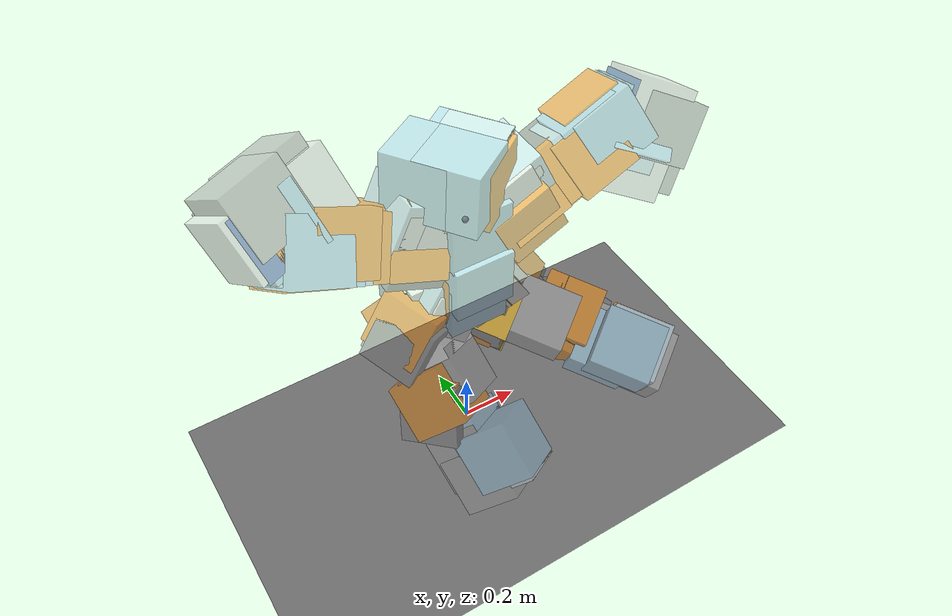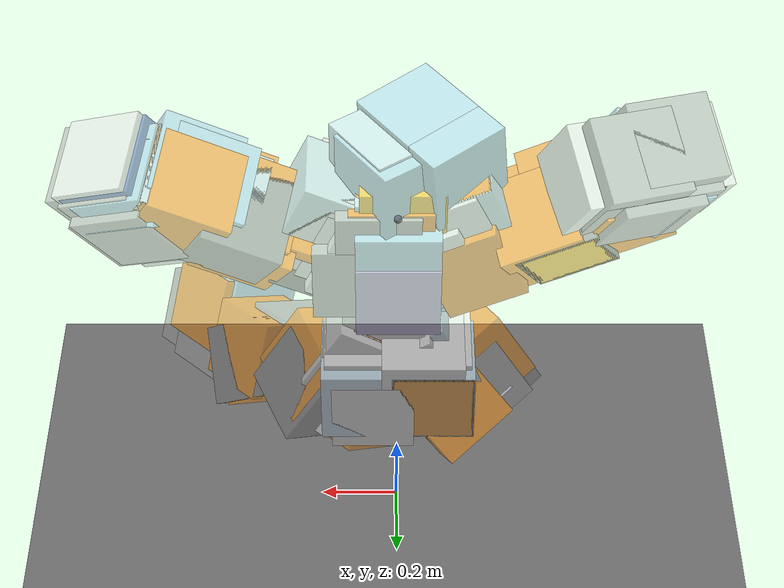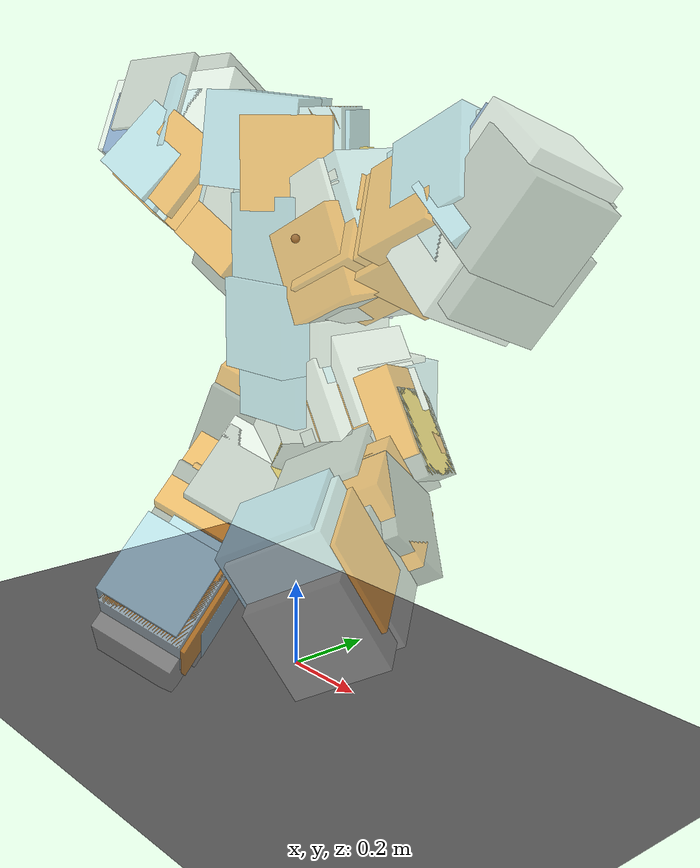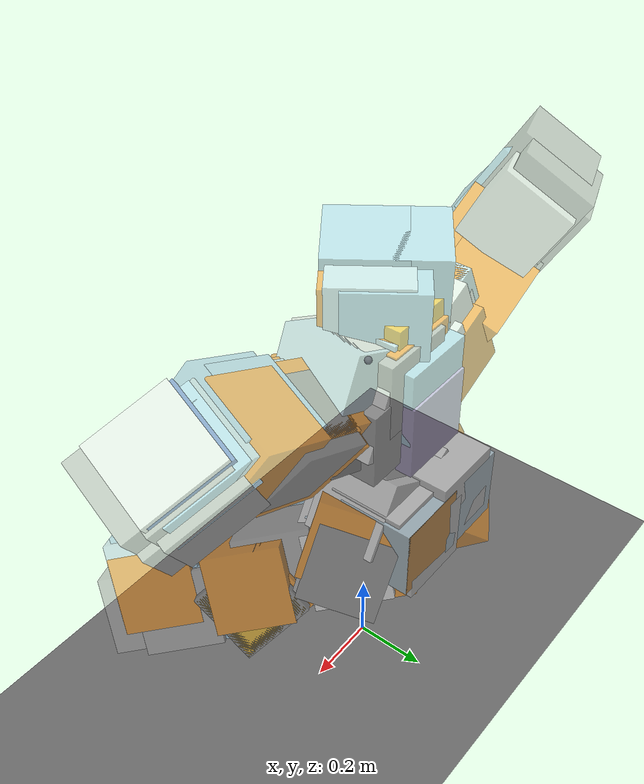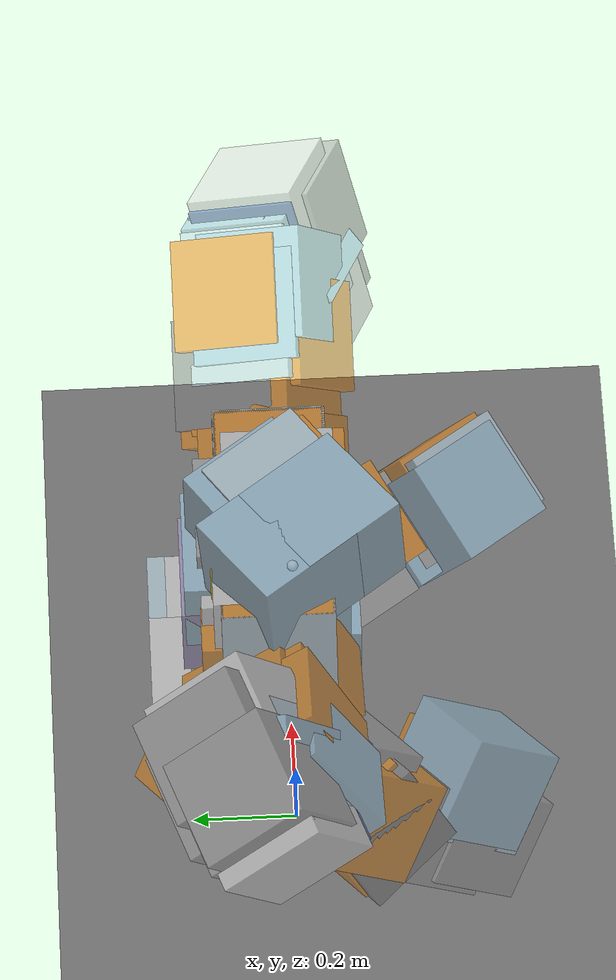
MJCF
<?xml version="1.0" ?>
<mujoco model="robot">

  <compiler angle="radian" meshdir="meshes" autolimits="true"/>

  <default>
    <joint limited="true" damping="0.1" armature="0.01"/>
    <geom condim="4" contype="1" conaffinity="15" friction="0.9 0.2 0.2" solref="0.001 2"/>
    <motor ctrllimited="true"/>
    <equality solref="0.001 2"/>
  </default>

  <asset>
    <texture name="texplane" type="2d" builtin="checker" rgb1=".0 .0 .0" rgb2=".8 .8 .8" width="100" height="108"/>
    <material name="matplane" reflectance="0." texture="texplane" texrepeat="1 1" texuniform="true"/>
  </asset>

  <worldbody>

    <geom name="ground" type="plane" pos="0.001 0 0" quat="1 0 0 0" material="matplane" condim="1" conaffinity="15" size="0 0 1"/>
    <light directional="true" diffuse="0.6 0.6 0.6" specular="0.2 0.2 0.2" pos="0 0 4" dir="0 0 -1"/>
    <light directional="true" diffuse="0.4 0.4 0.4" specular="0.1 0.1 0.1" pos="0 0 5.0" dir="0 0 -1" castshadow="false"/>
    <body name="root" pos="0 0 1.0" quat="1 0 0 0">
      <joint name="root_x" type="slide" axis="1 0 0" limited="false"/>
      <joint name="root_y" type="slide" axis="0 1 0" limited="false"/>
      <joint name="root_z" type="slide" axis="0 0 1" limited="false"/>
      <joint name="root_ball" type="ball" limited="false"/>
      <site name="imu" size="0.01" pos="0 0 0"/>
      <geom type="box" rgba="0.615686 0.811765 0.929412 0.501961" size="0.1 0.1 0.1"/>

      <geom pos="0.0160579 0.0593235 0.0498109" quat="0 -2.32051e-08 1 -2.32051e-08" type="box" rgba="0.972549 0.529412 0.00392157 0.501961" size="0.1 0.1 0.1"/>

      <geom pos="0.000148008 0.0434136 0.0633109" quat="2.32051e-08 0 -4.64102e-08 -1" type="box" rgba="0.768627 0.886275 0.952941 0.501961" size="0.1 0.1 0.1"/>

      <geom pos="-0.0870555 0.0664737 -0.0301332" quat="0.379928 -0.596368 0.596368 -0.379928" type="box" rgba="0.917647 0.917647 0.917647 0.501961" size="0.1 0.1 0.1"/>

      <geom pos="-0.0766223 0.032495 -0.00775921" quat="0.596368 0.379928 -0.379928 -0.596368" type="box" rgba="0.768627 0.886275 0.952941 0.501961" size="0.1 0.1 0.1"/>

      <geom pos="0.0870988 0.0664737 -0.0302898" quat="0.379928 -0.596368 -0.596368 0.379928" type="box" rgba="0.917647 0.917647 0.917647 0.501961" size="0.1 0.1 0.1"/>

      <geom pos="0.0766657 0.032495 -0.00791584" quat="0.596368 0.379928 0.379928 0.596368" type="box" rgba="0.768627 0.886275 0.952941 0.501961" size="0.1 0.1 0.1"/>

      <geom pos="-0.0521972 0.0576546 -0.0517891" quat="-2.32051e-08 1 0 0" type="box" rgba="0.615686 0.811765 0.929412 0.501961" size="0.1 0.1 0.1"/>

      <geom pos="0.101188 0.070595 -0.0581391" quat="0.707107 0.707107 0 0" type="box" rgba="0.647059 0.647059 0.647059 0.501961" size="0.1 0.1 0.1"/>

      <geom pos="0.0339639 0.0573548 -0.267689" quat="-1 -4.64102e-08 0 0" type="box" rgba="0.917647 0.917647 0.917647 0.501961" size="0.1 0.1 0.1"/>

      <geom pos="-1.4863e-05 0.0326678 -0.267689" quat="-1 -4.64102e-08 0 0" type="box" rgba="0.972549 0.529412 0.00392157 0.501961" size="0.1 0.1 0.1"/>

      <geom pos="-1.4863e-05 0.0171678 -0.300689" quat="6.96153e-08 -1 0 0" type="box" rgba="0.615686 0.811765 0.929412 0.501961" size="0.1 0.1 0.1"/>

      <geom pos="-0.0608462 0.162768 -0.344553" quat="-0.707107 -0.707107 0 0" type="box" rgba="0.917647 0.917647 0.917647 0.501961" size="0.1 0.1 0.1"/>

      <geom pos="-0.0855332 0.162768 -0.378532" quat="-0.5 -0.5 0.5 -0.5" type="box" rgba="0.768627 0.886275 0.952941 0.501961" size="0.1 0.1 0.1"/>

      <geom pos="0.0608165 0.162768 -0.41251" quat="-0.707107 -0.707107 0 0" type="box" rgba="0.917647 0.917647 0.917647 0.501961" size="0.1 0.1 0.1"/>

      <geom pos="0.0855035 0.162768 -0.378532" quat="-0.5 -0.5 -0.5 0.5" type="box" rgba="0.768627 0.886275 0.952941 0.501961" size="0.1 0.1 0.1"/>

      <geom pos="-1.4863e-05 0.0326678 -0.267689" quat="6.96153e-08 -1 0 0" type="box" rgba="0.768627 0.886275 0.952941 0.501961" size="0.1 0.1 0.1"/>

      <geom pos="5.1467e-05 -0.0190049 -0.184989" quat="0 -2.32051e-08 -1 -2.32051e-08" type="box" rgba="0.615686 0.811765 0.929412 0.501961" size="0.1 0.1 0.1"/>

      <geom pos="0.0457081 0.070595 0.0448109" quat="0.707107 0.707107 0 0" type="box" rgba="0.647059 0.647059 0.647059 0.501961" size="0.1 0.1 0.1"/>

      <geom pos="-1.4862e-05 0.095595 0.00363456" quat="0.707107 0.707107 0 0" type="box" rgba="0.615686 0.811765 0.929412 0.501961" size="0.1 0.1 0.1"/>

      <geom pos="-1.4862e-05 0.101945 -0.0860179" quat="0.707107 0.707107 0 0" type="box" rgba="0.654902 0.584314 0.823529 0.501961" size="0.1 0.1 0.1"/>

      <body name="link_head_1_x4_1_inner_1" pos="0.000148008 0.0434136 0.0633109" quat="0 2.32051e-08 -1 6.96153e-08">

        <inertial pos="0.00202976 -0.0118633 -0.105521" quat="0.838901 -0.101396 -0.0688856 0.5303" mass="0.827332" diaginertia="0.00357088 0.00317042 0.00242602"/>

        <joint name="joint_head_1_x4_1_dof_x4" pos="0 0 0" axis="0 0 1" range="-0.1 0" actuatorfrcrange="-1.5 1.5"/>

        <geom type="box" rgba="0.972549 0.529412 0.00392157 0.501961" size="0.1 0.1 0.1"/>

        <geom pos="0.0105058 0.00467747 -0.0345" quat="-2.32051e-08 1 0 0" type="box" rgba="0.980392 0.713726 0.00392157 0.501961" size="0.1 0.1 0.1"/>

        <geom pos="-0.0153423 -0.0481844 -0.10559" quat="0.672498 0.672499 -0.218508 -0.218508" type="box" rgba="0.972549 0.529412 0.00392157 0.501961" size="0.1 0.1 0.1"/>

        <geom pos="-0.0202786 -0.0279111 -0.1215" quat="-0.672499 0.672498 -0.218508 0.218508" type="box" rgba="0.768627 0.886275 0.952941 0.501961" size="0.1 0.1 0.1"/>

        <geom pos="-0.0202786 -0.0279111 -0.1215" quat="-0.672498 -0.672499 0.218508 0.218508" type="box" rgba="0.972549 0.529412 0.00392157 0.501961" size="0.1 0.1 0.1"/>

        <geom pos="-0.00752685 0.00546858 -0.11474" quat="0.672499 -0.672498 0.218508 -0.218508" type="box" rgba="0.615686 0.811765 0.929412 0.501961" size="0.1 0.1 0.1"/>

        <geom pos="0.1069 -0.0191042 -0.148502" quat="0.337381 0.303779 -0.5962 -0.662147" type="box" rgba="0.615686 0.811765 0.929412 0.501961" size="0.1 0.1 0.1"/>

        <geom pos="0.051203 -0.095764 -0.148502" quat="0.337381 0.303779 -0.5962 -0.662147" type="box" rgba="0.615686 0.811765 0.929412 0.501961" size="0.1 0.1 0.1"/>

      </body>

      <body name="link_right_arm_1_x8_1_inner_1" pos="-0.0766223 0.032495 -0.00775921" quat="0.379928 -0.596368 0.596368 -0.379928">

        <inertial pos="5.74658e-05 -0.0157287 -0.0923329" quat="0.705112 -0.0547355 0.055379 0.704808" mass="0.917616" diaginertia="0.00229411 0.00183573 0.000730018"/>

        <joint name="joint_right_arm_1_x8_1_dof_x8" pos="0 0 0" axis="0 0 1" range="1.47 1.5" actuatorfrcrange="-6 6"/>

        <geom type="box" rgba="0.972549 0.529412 0.00392157 0.501961" size="0.1 0.1 0.1"/>

        <geom pos="0 0.0155 -0.033" quat="-2.32051e-08 1 0 0" type="box" rgba="0.917647 0.917647 0.917647 0.501961" size="0.1 0.1 0.1"/>

        <geom pos="-0.0129787 -0.033 -0.0700556" quat="0.707107 0.707107 0 0" type="box" rgba="0.917647 0.917647 0.917647 0.501961" size="0.1 0.1 0.1"/>

        <geom pos="0 -0.033 -0.11" quat="-0.707107 0.707107 0 0" type="box" rgba="0.768627 0.886275 0.952941 0.501961" size="0.1 0.1 0.1"/>

        <body name="link_right_arm_1_x8_2_inner_1" pos="0 -0.033 -0.11" quat="0.707107 0.707107 0 0">

          <inertial pos="-0.0143491 -0.228792 -0.0717893" quat="0.727446 0.648688 -0.17523 0.139001" mass="2.51025" diaginertia="0.0680865 0.0653997 0.00571534"/>

          <joint name="joint_right_arm_1_x8_2_dof_x8" pos="0 0 0" axis="0 0 1" range="1.8 1.83" actuatorfrcrange="-6 6"/>

          <geom type="box" rgba="0.972549 0.529412 0.00392157 0.501961" size="0.1 0.1 0.1"/>

          <geom pos="0 0.0155 -0.033" type="box" rgba="0.917647 0.917647 0.917647 0.501961" size="0.1 0.1 0.1"/>

          <geom pos="-0.036 0.0325 -0.0945" quat="0.5 -0.5 -0.5 -0.5" type="box" rgba="0.972549 0.529412 0.00392157 0.501961" size="0.1 0.1 0.1"/>

          <geom pos="0 0.0325 -0.0945" quat="0.5 -0.5 -0.5 -0.5" type="box" rgba="0.498039 0.498039 0.498039 0.501961" size="0.1 0.1 0.1"/>

          <geom pos="0.00995929 1.23147e-09 -0.08875" quat="-0.183013 0.183013 -0.683013 -0.683013" type="box" rgba="0.972549 0.529412 0.00392157 0.501961" size="0.1 0.1 0.1"/>

          <geom pos="-0.0371458 -0.150323 -0.0951615" quat="-0.353553 0.612372 0.612372 -0.353553" type="box" rgba="0.972549 0.529412 0.00392157 0.501961" size="0.1 0.1 0.1"/>

          <geom pos="-0.0281458 -0.1815 -0.11075" quat="-0.353553 0.612372 0.612372 -0.353553" type="box" rgba="0.498039 0.498039 0.498039 0.501961" size="0.1 0.1 0.1"/>

          <geom pos="5.79459e-09 -0.17 -0.0945" quat="-0.612372 -0.353553 -0.353553 -0.612372" type="box" rgba="0.972549 0.529412 0.00392157 0.501961" size="0.1 0.1 0.1"/>

          <geom pos="0.0101536 -0.246 -0.0702667" quat="0.353553 -0.353553 -0.612372 -0.612372" type="box" rgba="0.972549 0.529412 0.00392157 0.501961" size="0.1 0.1 0.1"/>

          <geom pos="0.00433014 -0.2595 -0.092" quat="0.353553 0.353553 -0.612372 0.612372" type="box" rgba="0.768627 0.886275 0.952941 0.501961" size="0.1 0.1 0.1"/>

          <geom pos="0.00433014 -0.2595 -0.092" quat="-0.353553 0.353553 0.612372 0.612372" type="box" rgba="0.972549 0.529412 0.00392157 0.501961" size="0.1 0.1 0.1"/>

          <geom pos="0.0148359 -0.294 -0.0966775" quat="-0.32102 0.32102 0.630037 0.630037" type="box" rgba="0.615686 0.811765 0.929412 0.501961" size="0.1 0.1 0.1"/>

          <geom pos="-0.00897072 -0.32159 -0.121329" quat="-0.453991 -1.98957e-08 0.891007 -4.03647e-08" type="box" rgba="0.972549 0.529412 0.00392157 0.501961" size="0.1 0.1 0.1"/>

          <geom pos="-0.0074006 -0.3375 -0.100523" quat="3.04306e-08 -0.453991 -6.10406e-08 -0.891007" type="box" rgba="0.768627 0.886275 0.952941 0.501961" size="0.1 0.1 0.1"/>

          <geom pos="-0.0074006 -0.3375 -0.100523" quat="0.453991 4.09655e-08 -0.891007 8.17165e-08" type="box" rgba="0.972549 0.529412 0.00392157 0.501961" size="0.1 0.1 0.1"/>

          <geom pos="0.0259791 -0.33074 -0.0877711" quat="-5.15004e-08 0.453991 1.02392e-07 0.891007" type="box" rgba="0.615686 0.811765 0.929412 0.501961" size="0.1 0.1 0.1"/>

          <geom pos="-0.0333098 -0.42144 -0.0648618" quat="-0.707107 -0.415627 -3.08568e-08 0.572061" type="box" rgba="0.615686 0.811765 0.929412 0.501961" size="0.1 0.1 0.1"/>

          <geom pos="-0.0248871 -0.450369 -0.0526365" quat="0.415627 -0.707107 0.572061 1.75821e-08" type="box" rgba="0.231373 0.380392 0.705882 0.501961" size="0.1 0.1 0.1"/>

          <geom pos="-0.0779239 -0.339786 0.0203623" quat="0.698401 -0.5 0.110616 0.5" type="box" rgba="0.917647 0.917647 0.917647 0.501961" size="0.1 0.1 0.1"/>

          <geom pos="-0.0769857 -0.369417 0.00205806" quat="8.27991e-09 -0.572061 -0.707107 -0.415627" type="box" rgba="0.647059 0.647059 0.647059 0.501961" size="0.1 0.1 0.1"/>

          <geom pos="-0.0981467 -0.395573 0.0311837" quat="8.27991e-09 -0.572061 -0.707107 -0.415627" type="box" rgba="0.647059 0.647059 0.647059 0.501961" size="0.1 0.1 0.1"/>

          <geom pos="-0.0226452 -0.469229 -0.0557222" quat="-0.5 -0.698401 -0.5 0.110616" type="box" rgba="0.917647 0.917647 0.917647 0.501961" size="0.1 0.1 0.1"/>

          <geom pos="-0.0445095 -0.445464 -0.0426416" quat="-0.415627 0.707107 -0.572061 -4.41316e-08" type="box" rgba="0.647059 0.647059 0.647059 0.501961" size="0.1 0.1 0.1"/>

          <geom pos="-0.0494902 -0.471621 -0.00176025" quat="-0.415627 0.707107 -0.572061 -4.41316e-08" type="box" rgba="0.647059 0.647059 0.647059 0.501961" size="0.1 0.1 0.1"/>

          <geom pos="-0.0787869 -0.404508 -0.038388" quat="0.415627 -0.707107 0.572061 1.75821e-08" type="box" rgba="0.647059 0.647059 0.647059 0.501961" size="0.1 0.1 0.1"/>

          <geom pos="-0.0367923 -0.352255 -0.063318" quat="-0.415627 0.707107 -0.572061 -1.55285e-08" type="box" rgba="0.972549 0.529412 0.00392157 0.501961" size="0.1 0.1 0.1"/>

          <geom pos="-0.0248438 -0.373061 -0.0526961" quat="-0.707107 -0.415627 -2.25378e-09 0.572061" type="box" rgba="0.768627 0.886275 0.952941 0.501961" size="0.1 0.1 0.1"/>

          <geom pos="-0.0248438 -0.373061 -0.0526961" quat="0.415627 -0.707107 0.572061 -1.1021e-08" type="box" rgba="0.972549 0.529412 0.00392157 0.501961" size="0.1 0.1 0.1"/>

          <geom pos="-0.041404 -0.401839 -0.0378607" quat="0.226367 0.094653 0.904597 0.348574" type="box" rgba="0.615686 0.811765 0.929412 0.501961" size="0.1 0.1 0.1"/>

          <geom pos="-0.0281458 -0.1815 -0.11075" quat="-0.612372 -0.353553 -0.353553 -0.612372" type="box" rgba="0.980392 0.713726 0.00392157 0.501961" size="0.1 0.1 0.1"/>

          <geom pos="0 0.0325 -0.0945" quat="0.5 0.5 -0.5 0.5" type="box" rgba="0.980392 0.713726 0.00392157 0.501961" size="0.1 0.1 0.1"/>

        </body>

      </body>

      <body name="link_left_arm_2_x8_1_inner_1" pos="0.0766657 0.032495 -0.00791584" quat="0.379928 -0.596368 -0.596368 0.379928">

        <inertial pos="5.74658e-05 -0.0157287 -0.0923329" quat="0.705112 -0.0547355 0.055379 0.704808" mass="0.917616" diaginertia="0.00229411 0.00183573 0.000730018"/>

        <joint name="joint_left_arm_2_x8_1_dof_x8" pos="0 0 0" axis="0 0 1" range="-1.23 -1.2" actuatorfrcrange="-6 6"/>

        <geom type="box" rgba="0.972549 0.529412 0.00392157 0.501961" size="0.1 0.1 0.1"/>

        <geom pos="0 0.0155 -0.033" quat="-2.32051e-08 1 0 0" type="box" rgba="0.917647 0.917647 0.917647 0.501961" size="0.1 0.1 0.1"/>

        <geom pos="-0.0129787 -0.033 -0.0700556" quat="0.707107 0.707107 0 0" type="box" rgba="0.917647 0.917647 0.917647 0.501961" size="0.1 0.1 0.1"/>

        <geom pos="0 -0.033 -0.11" quat="-0.707107 0.707107 0 0" type="box" rgba="0.768627 0.886275 0.952941 0.501961" size="0.1 0.1 0.1"/>

        <body name="link_left_arm_2_x8_2_inner_1" pos="0 -0.033 -0.11" quat="0.707107 0.707107 0 0">

          <inertial pos="-0.0082135 -0.228792 -0.110868" quat="0.625134 0.762538 0.0972429 -0.13523" mass="2.51025" diaginertia="0.0691227 0.0669264 0.00509173"/>

          <joint name="joint_left_arm_2_x8_2_dof_x8" pos="0 0 0" axis="0 0 1" range="-1.63 -1.6" actuatorfrcrange="-6 6"/>

          <geom type="box" rgba="0.972549 0.529412 0.00392157 0.501961" size="0.1 0.1 0.1"/>

          <geom pos="0 0.0155 -0.033" type="box" rgba="0.917647 0.917647 0.917647 0.501961" size="0.1 0.1 0.1"/>

          <geom pos="-0.036 0.0325 -0.0945" quat="0.5 -0.5 -0.5 -0.5" type="box" rgba="0.972549 0.529412 0.00392157 0.501961" size="0.1 0.1 0.1"/>

          <geom pos="0 0.0325 -0.0945" quat="0.5 -0.5 -0.5 -0.5" type="box" rgba="0.498039 0.498039 0.498039 0.501961" size="0.1 0.1 0.1"/>

          <geom pos="-0.00995929 6.97758e-10 -0.08875" quat="0.683013 -0.683013 0.183013 0.183013" type="box" rgba="0.972549 0.529412 0.00392157 0.501961" size="0.1 0.1 0.1"/>

          <geom pos="0.0191458 -0.150323 -0.126338" quat="-0.353553 -0.612372 -0.612372 -0.353553" type="box" rgba="0.972549 0.529412 0.00392157 0.501961" size="0.1 0.1 0.1"/>

          <geom pos="0.0281458 -0.1815 -0.11075" quat="-0.353553 -0.612372 -0.612372 -0.353553" type="box" rgba="0.498039 0.498039 0.498039 0.501961" size="0.1 0.1 0.1"/>

          <geom pos="3.54902e-09 -0.17 -0.0945" quat="0.612372 -0.353553 -0.353553 0.612372" type="box" rgba="0.972549 0.529412 0.00392157 0.501961" size="0.1 0.1 0.1"/>

          <geom pos="-0.0260635 -0.246 -0.0978234" quat="0.353553 -0.353553 0.612372 0.612372" type="box" rgba="0.972549 0.529412 0.00392157 0.501961" size="0.1 0.1 0.1"/>

          <geom pos="-0.00433012 -0.2595 -0.092" quat="0.353553 0.353553 0.612372 -0.612372" type="box" rgba="0.768627 0.886275 0.952941 0.501961" size="0.1 0.1 0.1"/>

          <geom pos="-0.00433012 -0.2595 -0.092" quat="-0.353553 0.353553 -0.612372 -0.612372" type="box" rgba="0.972549 0.529412 0.00392157 0.501961" size="0.1 0.1 0.1"/>

          <geom pos="-0.0055322 -0.294 -0.080563" quat="-0.385118 0.385118 -0.59303 -0.59303" type="box" rgba="0.615686 0.811765 0.929412 0.501961" size="0.1 0.1 0.1"/>

          <geom pos="0.0277203 -0.32159 -0.0888542" quat="-0.544639 -1.44742e-08 -0.838671 1.67367e-08" type="box" rgba="0.972549 0.529412 0.00392157 0.501961" size="0.1 0.1 0.1"/>

          <geom pos="0.00891628 -0.3375 -0.0978977" quat="2.71126e-08 -0.544639 3.61981e-08 0.838671" type="box" rgba="0.768627 0.886275 0.952941 0.501961" size="0.1 0.1 0.1"/>

          <geom pos="0.00891628 -0.3375 -0.0978977" quat="0.544639 3.9751e-08 0.838671 -5.56595e-08" type="box" rgba="0.972549 0.529412 0.00392157 0.501961" size="0.1 0.1 0.1"/>

          <geom pos="-0.0188169 -0.33074 -0.0753659" quat="-5.23894e-08 0.544639 -7.5121e-08 -0.838671" type="box" rgba="0.615686 0.811765 0.929412 0.501961" size="0.1 0.1 0.1"/>

          <geom pos="-0.00901247 -0.42144 -0.138166" quat="0.353553 0.703233 -0.612372 0.0739128" type="box" rgba="0.615686 0.811765 0.929412 0.501961" size="0.1 0.1 0.1"/>

          <geom pos="-0.0238113 -0.450369 -0.136985" quat="-0.703233 0.353553 0.0739128 0.612372" type="box" rgba="0.231373 0.380392 0.705882 0.501961" size="0.1 0.1 0.1"/>

          <geom pos="-0.0605117 -0.339786 -0.219415" quat="-0.444997 0.683013 0.549525 0.183013" type="box" rgba="0.917647 0.917647 0.917647 0.501961" size="0.1 0.1 0.1"/>

          <geom pos="-0.0451289 -0.369417 -0.209451" quat="0.612372 -0.0739128 0.353553 0.703233" type="box" rgba="0.647059 0.647059 0.647059 0.501961" size="0.1 0.1 0.1"/>

          <geom pos="-0.0597719 -0.395573 -0.242339" quat="0.612372 -0.0739128 0.353553 0.703233" type="box" rgba="0.647059 0.647059 0.647059 0.501961" size="0.1 0.1 0.1"/>

          <geom pos="-0.02226 -0.469229 -0.1335" quat="0.683013 0.444997 -0.183013 0.549525" type="box" rgba="0.917647 0.917647 0.917647 0.501961" size="0.1 0.1 0.1"/>

          <geom pos="-0.0226559 -0.445464 -0.158976" quat="0.703233 -0.353553 -0.0739128 -0.612372" type="box" rgba="0.647059 0.647059 0.647059 0.501961" size="0.1 0.1 0.1"/>

          <geom pos="-0.0555699 -0.471621 -0.18373" quat="0.703233 -0.353553 -0.0739128 -0.612372" type="box" rgba="0.647059 0.647059 0.647059 0.501961" size="0.1 0.1 0.1"/>

          <geom pos="-0.00920094 -0.404508 -0.190787" quat="-0.703233 0.353553 0.0739128 0.612372" type="box" rgba="0.647059 0.647059 0.647059 0.501961" size="0.1 0.1 0.1"/>

          <geom pos="-0.00860825 -0.352255 -0.141954" quat="0.703233 -0.353553 -0.0739128 -0.612372" type="box" rgba="0.972549 0.529412 0.00392157 0.501961" size="0.1 0.1 0.1"/>

          <geom pos="-0.0237813 -0.373061 -0.136917" quat="0.353553 0.703233 -0.612372 0.0739128" type="box" rgba="0.768627 0.886275 0.952941 0.501961" size="0.1 0.1 0.1"/>

          <geom pos="-0.0237813 -0.373061 -0.136917" quat="-0.703233 0.353553 0.0739128 0.612372" type="box" rgba="0.972549 0.529412 0.00392157 0.501961" size="0.1 0.1 0.1"/>

          <geom pos="-0.028349 -0.401839 -0.158677" quat="-0.896587 0.254547 -0.256259 -0.256259" type="box" rgba="0.615686 0.811765 0.929412 0.501961" size="0.1 0.1 0.1"/>

          <geom pos="0.0281458 -0.1815 -0.11075" quat="0.612372 -0.353553 -0.353553 0.612372" type="box" rgba="0.980392 0.713726 0.00392157 0.501961" size="0.1 0.1 0.1"/>

          <geom pos="0 0.0325 -0.0945" quat="0.5 0.5 -0.5 0.5" type="box" rgba="0.980392 0.713726 0.00392157 0.501961" size="0.1 0.1 0.1"/>

        </body>

      </body>

      <body name="link_legs_1_x8_1_inner_1" pos="-0.0855332 0.162768 -0.378532" quat="0.5 -0.5 -0.5 -0.5">

        <inertial pos="0.0140018 0.00808403 -0.0842001" quat="0.943137 0.00207075 -0.0740243 0.324051" mass="0.908312" diaginertia="0.00193332 0.00160535 0.000735299"/>

        <joint name="joint_legs_1_x8_1_dof_x8" pos="0 0 0" axis="0 0 1" range="-0.75 -0.15" actuatorfrcrange="-6 6"/>

        <geom type="box" rgba="0.972549 0.529412 0.00392157 0.501961" size="0.1 0.1 0.1"/>

        <geom pos="0.0134234 0.00775 -0.033" quat="-2.32051e-08 1 0 0" type="box" rgba="0.917647 0.917647 0.917647 0.501961" size="0.1 0.1 0.1"/>

        <geom pos="0.0115895 0.0459264 -0.073313" quat="0.353553 0.353553 0.612372 0.612372" type="box" rgba="0.917647 0.917647 0.917647 0.501961" size="0.1 0.1 0.1"/>

        <geom pos="0.0285788 0.0165 -0.098" quat="-0.353553 0.353553 0.612372 -0.612372" type="box" rgba="0.768627 0.886275 0.952941 0.501961" size="0.1 0.1 0.1"/>

        <body name="link_legs_1_right_leg_1_x8_1_inner_1" pos="0.0285788 0.0165 -0.098" quat="0.353553 0.353553 0.612372 0.612372">

          <inertial pos="-0.0381684 -0.0218296 -0.131938" quat="0.939524 -0.0480338 0.119492 0.317347" mass="1.31108" diaginertia="0.00531775 0.00452798 0.00167226"/>

          <joint name="joint_legs_1_right_leg_1_x8_1_dof_x8" pos="0 0 0" axis="0 0 1" range="-1 0" actuatorfrcrange="-6 6"/>

          <geom type="box" rgba="0.972549 0.529412 0.00392157 0.501961" size="0.1 0.1 0.1"/>

          <geom pos="0.0134234 -0.00775 -0.033" quat="-2.32051e-08 1 0 0" type="box" rgba="0.917647 0.917647 0.917647 0.501961" size="0.1 0.1 0.1"/>

          <geom pos="-0.0670252 -0.0199089 -0.099594" quat="-0.612372 0.612372 -0.353553 0.353553" type="box" rgba="0.972549 0.529412 0.00392157 0.501961" size="0.1 0.1 0.1"/>

          <geom pos="-0.0588363 -0.0340925 -0.15" quat="-0.683013 0.183013 -0.683013 -0.183013" type="box" rgba="0.498039 0.498039 0.498039 0.501961" size="0.1 0.1 0.1"/>

          <body name="link_legs_1_right_leg_1_x10_2_inner_1" pos="-0.0588363 -0.0340925 -0.15" quat="-0.183013 -0.683013 -0.183013 0.683013">

            <inertial pos="0.00071078 0.00685445 -0.0870115" quat="-0.280112 0.660187 0.0364271 0.695962" mass="1.64675" diaginertia="0.00394696 0.00350191 0.00324588"/>

            <joint name="joint_legs_1_right_leg_1_x10_2_dof_x10" pos="0 0 0" axis="0 0 1" range="-1.1 -0.4" actuatorfrcrange="-12 12"/>

            <geom type="box" rgba="0.980392 0.713726 0.00392157 0.501961" size="0.1 0.1 0.1"/>

            <geom pos="0 -0.018 -0.0405" quat="-2.32051e-08 1 0 0" type="box" rgba="0.647059 0.647059 0.647059 0.501961" size="0.1 0.1 0.1"/>

            <geom pos="0.00554001 -0.0527097 -0.118" quat="-0.866025 -4.01924e-08 0 -0.5" type="box" rgba="0.972549 0.529412 0.00392157 0.501961" size="0.1 0.1 0.1"/>

            <geom pos="-2.0548e-09 3.85337e-09 -0.118" quat="3.44263e-08 -0.258819 -0.965926 -6.00592e-09" type="box" rgba="0.980392 0.713726 0.00392157 0.501961" size="0.1 0.1 0.1"/>

            <geom pos="0.009 0.0155885 -0.0775" quat="0.258819 4.04322e-08 1.64085e-08 0.965926" type="box" rgba="0.917647 0.917647 0.917647 0.501961" size="0.1 0.1 0.1"/>

            <geom pos="-2.0548e-09 3.85337e-09 -0.118" quat="-0.258819 -2.84203e-08 2.84203e-08 -0.965926" type="box" rgba="0.498039 0.498039 0.498039 0.501961" size="0.1 0.1 0.1"/>

            <body name="link_legs_1_right_leg_1_51t_hdt5_15mm_belt_knee_right_1" pos="0.0906636 0.157034 -0.0795" quat="-0.866025 -4.01924e-08 0 -0.5">

              <inertial pos="0.0682772 -0.0369684 0.0351927" quat="0.988549 -0.108775 0.0379164 0.0974769" mass="0.643166" diaginertia="0.00188519 0.00174251 0.000550459"/>

              <joint name="joint_legs_1_right_leg_1_knee_revolute" pos="0 0 0" axis="0 0 -1" range="0 1.2" actuatorfrcrange="-13.9 13.9"/>

              <geom type="box" rgba="0.647059 0.647059 0.647059 0.501961" size="0.1 0.1 0.1"/>

              <geom pos="0.0393231 -0.032 0.0535" quat="-1.64085e-08 0.707107 0.707107 -1.64085e-08" type="box" rgba="0.972549 0.529412 0.00392157 0.501961" size="0.1 0.1 0.1"/>

              <geom pos="0.0705 -0.05 0.0535" quat="0.5 -8.49366e-09 -8.49366e-09 -0.866025" type="box" rgba="0.498039 0.498039 0.498039 0.501961" size="0.1 0.1 0.1"/>

              <geom pos="0.059 -0.05 0.021" quat="-3.10889e-09 0.5 -0.866025 2.85899e-08" type="box" rgba="0.972549 0.529412 0.00392157 0.501961" size="0.1 0.1 0.1"/>

              <geom pos="0.0705 -0.05 0.0535" quat="-2.00962e-08 -0.5 0.866025 1.16026e-08" type="box" rgba="0.980392 0.713726 0.00392157 0.501961" size="0.1 0.1 0.1"/>

              <body name="link_legs_1_right_leg_1_ankle_pulley_1" pos="0.24 -0.05 0" quat="0.707107 0 0 0.707107">

                <inertial pos="0.0583897 -0.0586158 0.011872" quat="0.190983 0.678427 -0.192074 0.682912" mass="0.219424" diaginertia="0.000467205 0.000423937 8.61629e-05"/>

                <joint name="joint_legs_1_right_leg_1_ankle_revolute" pos="0 0 0" axis="0 0 -1" range="-0.3 0.3" actuatorfrcrange="-6 6"/>

                <geom type="box" rgba="0.615686 0.811765 0.929412 0.501961" size="0.1 0.1 0.1"/>

                <geom pos="0 -0.0270536 0.002" quat="-2.32051e-08 1 0 0" type="box" rgba="0.647059 0.647059 0.647059 0.501961" size="0.1 0.1 0.1"/>

                <geom pos="0.0645536 -0.0663036 0.00154071" quat="0.5 0.5 0.5 0.5" type="box" rgba="0.972549 0.529412 0.00392157 0.501961" size="0.1 0.1 0.1"/>

                <body name="link_legs_1_right_leg_1_x4_1_outer_1" pos="0.0990536 -0.070981 0.0120465" quat="0.707107 3.53553e-08 0.707107 1.64085e-08">

                  <inertial pos="1.40239e-09 -0.0149273 -0.046385" quat="0.924887 -0.380242 0 0" mass="0.390442" diaginertia="0.00139916 0.00114182 0.000664788"/>

                  <joint name="joint_legs_1_right_leg_1_x4_1_dof_x4" pos="0 0 0" axis="0 0 -1" range="-0.3 0.3" actuatorfrcrange="-1.5 1.5"/>

                  <geom type="box" rgba="0.768627 0.886275 0.952941 0.501961" size="0.1 0.1 0.1"/>

                  <geom quat="-2.32051e-08 1 0 0" type="box" rgba="0.972549 0.529412 0.00392157 0.501961" size="0.1 0.1 0.1"/>

                  <geom pos="-0.0159099 0.0159099 0.0135" quat="-1 -4.64102e-08 0 0" type="box" rgba="0.615686 0.811765 0.929412 0.501961" size="0.1 0.1 0.1"/>

                  <geom pos="2e-09 -0.037 -0.0853793" quat="1.64085e-08 1.64085e-08 -0.707107 -0.707107" type="box" rgba="0.647059 0.647059 0.647059 0.501961" size="0.1 0.1 0.1"/>

                </body>

              </body>

            </body>

          </body>

        </body>

      </body>

      <body name="link_legs_1_x8_2_inner_1" pos="0.0855035 0.162768 -0.378532" quat="0.5 -0.5 0.5 0.5">

        <inertial pos="-0.0140019 0.00808388 -0.0842001" quat="0.943137 0.00207089 0.0740242 -0.324052" mass="0.908312" diaginertia="0.00193332 0.00160535 0.000735299"/>

        <joint name="joint_legs_1_x8_2_dof_x8" pos="0 0 0" axis="0 0 1" range="0.2 0.75" actuatorfrcrange="-6 6"/>

        <geom type="box" rgba="0.972549 0.529412 0.00392157 0.501961" size="0.1 0.1 0.1"/>

        <geom pos="-0.0134234 0.00775 -0.033" quat="-2.32051e-08 1 0 0" type="box" rgba="0.917647 0.917647 0.917647 0.501961" size="0.1 0.1 0.1"/>

        <geom pos="-0.0455682 -0.0129264 -0.073313" quat="-0.353553 0.353553 -0.612372 0.612372" type="box" rgba="0.917647 0.917647 0.917647 0.501961" size="0.1 0.1 0.1"/>

        <geom pos="-0.0285788 0.0165 -0.098" quat="-0.353553 0.353553 -0.612372 0.612372" type="box" rgba="0.768627 0.886275 0.952941 0.501961" size="0.1 0.1 0.1"/>

        <body name="link_legs_1_left_leg_1_x8_1_inner_1" pos="-0.0285788 0.0165 -0.098" quat="-0.353553 -0.353553 0.612372 0.612372">

          <inertial pos="0.0379892 0.02214 -0.131938" quat="0.941093 0.0447332 -0.122919 0.311825" mass="1.31108" diaginertia="0.00532045 0.00453353 0.00166401"/>

          <joint name="joint_legs_1_left_leg_1_x8_1_dof_x8" pos="0 0 0" axis="0 0 1" range="-0.71 -0.3" actuatorfrcrange="-6 6"/>

          <geom type="box" rgba="0.972549 0.529412 0.00392157 0.501961" size="0.1 0.1 0.1"/>

          <geom pos="0 -0.0155 -0.033" quat="-2.32051e-08 1 0 0" type="box" rgba="0.917647 0.917647 0.917647 0.501961" size="0.1 0.1 0.1"/>

          <geom pos="0.0671321 0.0197238 -0.099594" quat="0.612372 0.612372 -0.353553 -0.353553" type="box" rgba="0.972549 0.529412 0.00392157 0.501961" size="0.1 0.1 0.1"/>

          <geom pos="0.0589432 0.0339075 -0.15" quat="0.183013 0.683013 0.183013 -0.683013" type="box" rgba="0.498039 0.498039 0.498039 0.501961" size="0.1 0.1 0.1"/>

          <body name="link_legs_1_left_leg_1_x10_1_inner_1" pos="0.0589432 0.0339075 -0.15" quat="-0.683013 0.183013 -0.683013 -0.183013">

            <inertial pos="0.000710775 -0.00685446 -0.0870115" quat="0.280115 0.660186 -0.036432 0.695962" mass="1.64675" diaginertia="0.00394696 0.0035019 0.00324588"/>

            <joint name="joint_legs_1_left_leg_1_x10_1_dof_x10" pos="0 0 0" axis="0 0 1" range="-0.1 1.2" actuatorfrcrange="-12 12"/>

            <geom type="box" rgba="0.980392 0.713726 0.00392157 0.501961" size="0.1 0.1 0.1"/>

            <geom pos="0.0155885 -0.009 -0.0405" quat="-2.32051e-08 1 0 0" type="box" rgba="0.647059 0.647059 0.647059 0.501961" size="0.1 0.1 0.1"/>

            <geom pos="0.00554001 0.0527097 -0.118" quat="-0.866025 -4.01924e-08 0 0.5" type="box" rgba="0.972549 0.529412 0.00392157 0.501961" size="0.1 0.1 0.1"/>

            <geom pos="-2.6548e-09 3.34021e-09 -0.118" quat="3.44263e-08 -0.258819 0.965926 6.00592e-09" type="box" rgba="0.980392 0.713726 0.00392157 0.501961" size="0.1 0.1 0.1"/>

            <geom pos="0.018 1.61837e-09 -0.0775" quat="0.258819 4.04322e-08 -1.64085e-08 -0.965926" type="box" rgba="0.917647 0.917647 0.917647 0.501961" size="0.1 0.1 0.1"/>

            <geom pos="-2.6548e-09 3.34021e-09 -0.118" quat="-0.258819 -2.84203e-08 -2.84203e-08 0.965926" type="box" rgba="0.498039 0.498039 0.498039 0.501961" size="0.1 0.1 0.1"/>

            <body name="link_legs_1_left_leg_1_51t_hdt5_15mm_belt_knee_left_1" pos="0.0906636 -0.157034 -0.0795" quat="-0.866025 -4.01924e-08 0 0.5">

              <inertial pos="0.0682779 0.0369688 0.0351927" quat="0.982089 -0.133732 -0.0379964 -0.127176" mass="0.643166" diaginertia="0.00188526 0.00177536 0.00051756"/>

              <joint name="joint_legs_1_left_leg_1_knee_revolute" pos="0 0 0" axis="0 0 -1" range="-1.2 0" actuatorfrcrange="-13.9 13.9"/>

              <geom type="box" rgba="0.647059 0.647059 0.647059 0.501961" size="0.1 0.1 0.1"/>

              <geom pos="0.0705 0.014 0.0535" quat="-1.64085e-08 0.707107 -0.707107 1.64085e-08" type="box" rgba="0.972549 0.529412 0.00392157 0.501961" size="0.1 0.1 0.1"/>

              <geom pos="0.0705 0.05 0.0535" quat="0.5 -8.49366e-09 8.49366e-09 0.866025" type="box" rgba="0.498039 0.498039 0.498039 0.501961" size="0.1 0.1 0.1"/>

              <geom pos="0.059 0.05 0.021" quat="-3.10889e-09 0.5 0.866025 -2.85899e-08" type="box" rgba="0.972549 0.529412 0.00392157 0.501961" size="0.1 0.1 0.1"/>

              <geom pos="0.0705 0.05 0.0535" quat="-2.00962e-08 -0.5 -0.866025 -1.16026e-08" type="box" rgba="0.980392 0.713726 0.00392157 0.501961" size="0.1 0.1 0.1"/>

              <body name="link_legs_1_left_leg_1_ankle_pulley_1" pos="0.24 0.05 0" quat="0.707107 0 0 -0.707107">

                <inertial pos="0.0583897 0.0586158 0.011128" quat="-0.192074 0.682912 0.190983 0.678427" mass="0.219424" diaginertia="0.000467205 0.000423937 8.61629e-05"/>

                <joint name="joint_legs_1_left_leg_1_ankle_revolute" pos="0 0 0" axis="0 0 -1" range="-0.3 0.3" actuatorfrcrange="-6 6"/>

                <geom type="box" rgba="0.615686 0.811765 0.929412 0.501961" size="0.1 0.1 0.1"/>

                <geom pos="0 0.0270536 0.021" type="box" rgba="0.647059 0.647059 0.647059 0.501961" size="0.1 0.1 0.1"/>

                <geom pos="0.0645536 0.0663036 0.0214593" quat="0.5 -0.5 0.5 -0.5" type="box" rgba="0.972549 0.529412 0.00392157 0.501961" size="0.1 0.1 0.1"/>

                <body name="link_legs_1_left_leg_1_x4_1_outer_1" pos="0.0990536 0.070981 0.0109535" quat="1.89469e-08 -0.707107 0 -0.707107">

                  <inertial pos="1.40239e-09 -0.0149273 -0.046385" quat="0.924887 -0.380242 0 0" mass="0.390442" diaginertia="0.00139916 0.00114182 0.000664788"/>

                  <joint name="joint_legs_1_left_leg_1_x4_1_dof_x4" pos="0 0 0" axis="0 0 -1" range="-0.3 0.3" actuatorfrcrange="-1.5 1.5"/>

                  <geom type="box" rgba="0.768627 0.886275 0.952941 0.501961" size="0.1 0.1 0.1"/>

                  <geom quat="-2.32051e-08 1 0 0" type="box" rgba="0.972549 0.529412 0.00392157 0.501961" size="0.1 0.1 0.1"/>

                  <geom pos="-0.0159099 0.0159099 0.0135" quat="-1 -4.64102e-08 0 0" type="box" rgba="0.615686 0.811765 0.929412 0.501961" size="0.1 0.1 0.1"/>

                  <geom pos="2e-09 -0.037 -0.0853793" quat="1.64085e-08 1.64085e-08 -0.707107 -0.707107" type="box" rgba="0.647059 0.647059 0.647059 0.501961" size="0.1 0.1 0.1"/>

                </body>

              </body>

            </body>

          </body>

        </body>

      </body>

    </body>
  </worldbody>

  <actuator>
    <motor name="joint_head_1_x4_1_dof_x4" joint="joint_head_1_x4_1_dof_x4" ctrllimited="true" ctrlrange="-0.1 0.0" gear="1"/>
    <motor name="joint_right_arm_1_x8_1_dof_x8" joint="joint_right_arm_1_x8_1_dof_x8" ctrllimited="true" ctrlrange="1.47 1.5" gear="1"/>
    <motor name="joint_left_arm_2_x8_1_dof_x8" joint="joint_left_arm_2_x8_1_dof_x8" ctrllimited="true" ctrlrange="-1.23 -1.2" gear="1"/>
    <motor name="joint_right_arm_1_x8_2_dof_x8" joint="joint_right_arm_1_x8_2_dof_x8" ctrllimited="true" ctrlrange="1.8 1.83" gear="1"/>
    <motor name="joint_left_arm_2_x8_2_dof_x8" joint="joint_left_arm_2_x8_2_dof_x8" ctrllimited="true" ctrlrange="-1.63 -1.6" gear="1"/>
    <motor name="joint_legs_1_x8_1_dof_x8" joint="joint_legs_1_x8_1_dof_x8" ctrllimited="true" ctrlrange="-0.75 -0.15" gear="1"/>
    <motor name="joint_legs_1_x8_2_dof_x8" joint="joint_legs_1_x8_2_dof_x8" ctrllimited="true" ctrlrange="0.2 0.75" gear="1"/>
    <motor name="joint_legs_1_right_leg_1_x8_1_dof_x8" joint="joint_legs_1_right_leg_1_x8_1_dof_x8" ctrllimited="true" ctrlrange="-1 0.0" gear="1"/>
    <motor name="joint_legs_1_left_leg_1_x8_1_dof_x8" joint="joint_legs_1_left_leg_1_x8_1_dof_x8" ctrllimited="true" ctrlrange="-0.71 -0.3" gear="1"/>
    <motor name="joint_legs_1_right_leg_1_x10_2_dof_x10" joint="joint_legs_1_right_leg_1_x10_2_dof_x10" ctrllimited="true" ctrlrange="-1.1 -0.4" gear="1"/>
    <motor name="joint_legs_1_left_leg_1_x10_1_dof_x10" joint="joint_legs_1_left_leg_1_x10_1_dof_x10" ctrllimited="true" ctrlrange="-0.1 1.2" gear="1"/>
    <motor name="joint_legs_1_right_leg_1_knee_revolute" joint="joint_legs_1_right_leg_1_knee_revolute" ctrllimited="true" ctrlrange="0 1.2" gear="1"/>
    <motor name="joint_legs_1_left_leg_1_knee_revolute" joint="joint_legs_1_left_leg_1_knee_revolute" ctrllimited="true" ctrlrange="-1.2 0" gear="1"/>
    <motor name="joint_legs_1_right_leg_1_ankle_revolute" joint="joint_legs_1_right_leg_1_ankle_revolute" ctrllimited="true" ctrlrange="-0.3 0.3" gear="1"/>
    <motor name="joint_legs_1_left_leg_1_ankle_revolute" joint="joint_legs_1_left_leg_1_ankle_revolute" ctrllimited="true" ctrlrange="-0.3 0.3" gear="1"/>
    <motor name="joint_legs_1_right_leg_1_x4_1_dof_x4" joint="joint_legs_1_right_leg_1_x4_1_dof_x4" ctrllimited="true" ctrlrange="-0.3 0.3" gear="1"/>
    <motor name="joint_legs_1_left_leg_1_x4_1_dof_x4" joint="joint_legs_1_left_leg_1_x4_1_dof_x4" ctrllimited="true" ctrlrange="-0.3 0.3" gear="1"/>
  </actuator>
  <sensor>
    <actuatorpos name="joint_head_1_x4_1_dof_x4_p" actuator="joint_head_1_x4_1_dof_x4" user="13"/>
    <actuatorvel name="joint_head_1_x4_1_dof_x4_v" actuator="joint_head_1_x4_1_dof_x4" user="13"/>
    <actuatorfrc name="joint_head_1_x4_1_dof_x4_f" actuator="joint_head_1_x4_1_dof_x4" user="13" noise="0.001"/>
    <actuatorpos name="joint_right_arm_1_x8_1_dof_x8_p" actuator="joint_right_arm_1_x8_1_dof_x8" user="13"/>
    <actuatorvel name="joint_right_arm_1_x8_1_dof_x8_v" actuator="joint_right_arm_1_x8_1_dof_x8" user="13"/>
    <actuatorfrc name="joint_right_arm_1_x8_1_dof_x8_f" actuator="joint_right_arm_1_x8_1_dof_x8" user="13" noise="0.001"/>
    <actuatorpos name="joint_left_arm_2_x8_1_dof_x8_p" actuator="joint_left_arm_2_x8_1_dof_x8" user="13"/>
    <actuatorvel name="joint_left_arm_2_x8_1_dof_x8_v" actuator="joint_left_arm_2_x8_1_dof_x8" user="13"/>
    <actuatorfrc name="joint_left_arm_2_x8_1_dof_x8_f" actuator="joint_left_arm_2_x8_1_dof_x8" user="13" noise="0.001"/>
    <actuatorpos name="joint_right_arm_1_x8_2_dof_x8_p" actuator="joint_right_arm_1_x8_2_dof_x8" user="13"/>
    <actuatorvel name="joint_right_arm_1_x8_2_dof_x8_v" actuator="joint_right_arm_1_x8_2_dof_x8" user="13"/>
    <actuatorfrc name="joint_right_arm_1_x8_2_dof_x8_f" actuator="joint_right_arm_1_x8_2_dof_x8" user="13" noise="0.001"/>
    <actuatorpos name="joint_left_arm_2_x8_2_dof_x8_p" actuator="joint_left_arm_2_x8_2_dof_x8" user="13"/>
    <actuatorvel name="joint_left_arm_2_x8_2_dof_x8_v" actuator="joint_left_arm_2_x8_2_dof_x8" user="13"/>
    <actuatorfrc name="joint_left_arm_2_x8_2_dof_x8_f" actuator="joint_left_arm_2_x8_2_dof_x8" user="13" noise="0.001"/>
    <actuatorpos name="joint_legs_1_x8_1_dof_x8_p" actuator="joint_legs_1_x8_1_dof_x8" user="13"/>
    <actuatorvel name="joint_legs_1_x8_1_dof_x8_v" actuator="joint_legs_1_x8_1_dof_x8" user="13"/>
    <actuatorfrc name="joint_legs_1_x8_1_dof_x8_f" actuator="joint_legs_1_x8_1_dof_x8" user="13" noise="0.001"/>
    <actuatorpos name="joint_legs_1_x8_2_dof_x8_p" actuator="joint_legs_1_x8_2_dof_x8" user="13"/>
    <actuatorvel name="joint_legs_1_x8_2_dof_x8_v" actuator="joint_legs_1_x8_2_dof_x8" user="13"/>
    <actuatorfrc name="joint_legs_1_x8_2_dof_x8_f" actuator="joint_legs_1_x8_2_dof_x8" user="13" noise="0.001"/>
    <actuatorpos name="joint_legs_1_right_leg_1_x8_1_dof_x8_p" actuator="joint_legs_1_right_leg_1_x8_1_dof_x8" user="13"/>
    <actuatorvel name="joint_legs_1_right_leg_1_x8_1_dof_x8_v" actuator="joint_legs_1_right_leg_1_x8_1_dof_x8" user="13"/>
    <actuatorfrc name="joint_legs_1_right_leg_1_x8_1_dof_x8_f" actuator="joint_legs_1_right_leg_1_x8_1_dof_x8" user="13" noise="0.001"/>
    <actuatorpos name="joint_legs_1_left_leg_1_x8_1_dof_x8_p" actuator="joint_legs_1_left_leg_1_x8_1_dof_x8" user="13"/>
    <actuatorvel name="joint_legs_1_left_leg_1_x8_1_dof_x8_v" actuator="joint_legs_1_left_leg_1_x8_1_dof_x8" user="13"/>
    <actuatorfrc name="joint_legs_1_left_leg_1_x8_1_dof_x8_f" actuator="joint_legs_1_left_leg_1_x8_1_dof_x8" user="13" noise="0.001"/>
    <actuatorpos name="joint_legs_1_right_leg_1_x10_2_dof_x10_p" actuator="joint_legs_1_right_leg_1_x10_2_dof_x10" user="13"/>
    <actuatorvel name="joint_legs_1_right_leg_1_x10_2_dof_x10_v" actuator="joint_legs_1_right_leg_1_x10_2_dof_x10" user="13"/>
    <actuatorfrc name="joint_legs_1_right_leg_1_x10_2_dof_x10_f" actuator="joint_legs_1_right_leg_1_x10_2_dof_x10" user="13" noise="0.001"/>
    <actuatorpos name="joint_legs_1_left_leg_1_x10_1_dof_x10_p" actuator="joint_legs_1_left_leg_1_x10_1_dof_x10" user="13"/>
    <actuatorvel name="joint_legs_1_left_leg_1_x10_1_dof_x10_v" actuator="joint_legs_1_left_leg_1_x10_1_dof_x10" user="13"/>
    <actuatorfrc name="joint_legs_1_left_leg_1_x10_1_dof_x10_f" actuator="joint_legs_1_left_leg_1_x10_1_dof_x10" user="13" noise="0.001"/>
    <actuatorpos name="joint_legs_1_right_leg_1_knee_revolute_p" actuator="joint_legs_1_right_leg_1_knee_revolute" user="13"/>
    <actuatorvel name="joint_legs_1_right_leg_1_knee_revolute_v" actuator="joint_legs_1_right_leg_1_knee_revolute" user="13"/>
    <actuatorfrc name="joint_legs_1_right_leg_1_knee_revolute_f" actuator="joint_legs_1_right_leg_1_knee_revolute" user="13" noise="0.001"/>
    <actuatorpos name="joint_legs_1_left_leg_1_knee_revolute_p" actuator="joint_legs_1_left_leg_1_knee_revolute" user="13"/>
    <actuatorvel name="joint_legs_1_left_leg_1_knee_revolute_v" actuator="joint_legs_1_left_leg_1_knee_revolute" user="13"/>
    <actuatorfrc name="joint_legs_1_left_leg_1_knee_revolute_f" actuator="joint_legs_1_left_leg_1_knee_revolute" user="13" noise="0.001"/>
    <actuatorpos name="joint_legs_1_right_leg_1_ankle_revolute_p" actuator="joint_legs_1_right_leg_1_ankle_revolute" user="13"/>
    <actuatorvel name="joint_legs_1_right_leg_1_ankle_revolute_v" actuator="joint_legs_1_right_leg_1_ankle_revolute" user="13"/>
    <actuatorfrc name="joint_legs_1_right_leg_1_ankle_revolute_f" actuator="joint_legs_1_right_leg_1_ankle_revolute" user="13" noise="0.001"/>
    <actuatorpos name="joint_legs_1_left_leg_1_ankle_revolute_p" actuator="joint_legs_1_left_leg_1_ankle_revolute" user="13"/>
    <actuatorvel name="joint_legs_1_left_leg_1_ankle_revolute_v" actuator="joint_legs_1_left_leg_1_ankle_revolute" user="13"/>
    <actuatorfrc name="joint_legs_1_left_leg_1_ankle_revolute_f" actuator="joint_legs_1_left_leg_1_ankle_revolute" user="13" noise="0.001"/>
    <actuatorpos name="joint_legs_1_right_leg_1_x4_1_dof_x4_p" actuator="joint_legs_1_right_leg_1_x4_1_dof_x4" user="13"/>
    <actuatorvel name="joint_legs_1_right_leg_1_x4_1_dof_x4_v" actuator="joint_legs_1_right_leg_1_x4_1_dof_x4" user="13"/>
    <actuatorfrc name="joint_legs_1_right_leg_1_x4_1_dof_x4_f" actuator="joint_legs_1_right_leg_1_x4_1_dof_x4" user="13" noise="0.001"/>
    <actuatorpos name="joint_legs_1_left_leg_1_x4_1_dof_x4_p" actuator="joint_legs_1_left_leg_1_x4_1_dof_x4" user="13"/>
    <actuatorvel name="joint_legs_1_left_leg_1_x4_1_dof_x4_v" actuator="joint_legs_1_left_leg_1_x4_1_dof_x4" user="13"/>
    <actuatorfrc name="joint_legs_1_left_leg_1_x4_1_dof_x4_f" actuator="joint_legs_1_left_leg_1_x4_1_dof_x4" user="13" noise="0.001"/>

    <framequat name="orientation" objtype="site" noise="0.001" objname="imu"/>
    <gyro name="angular-velocity" site="imu" noise="0.005" cutoff="34.9"/>
  </sensor>
</mujoco>
